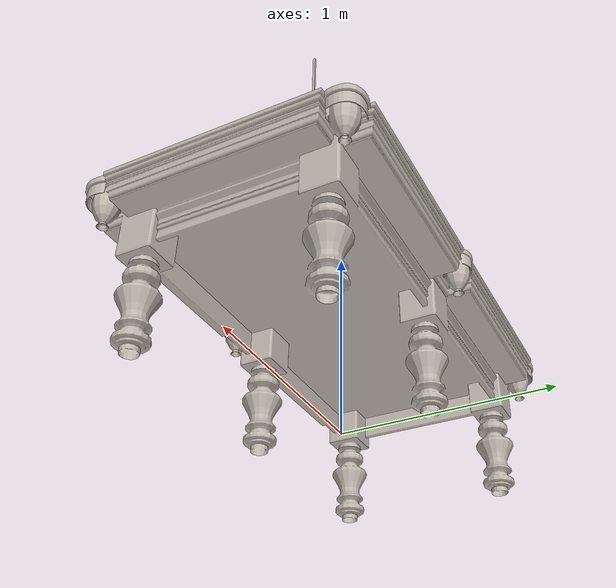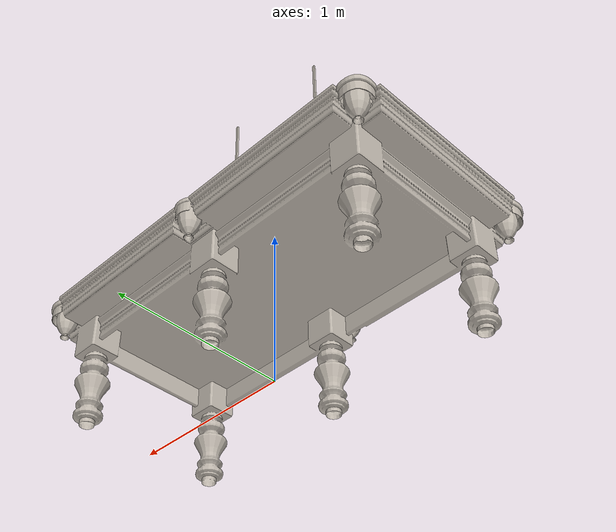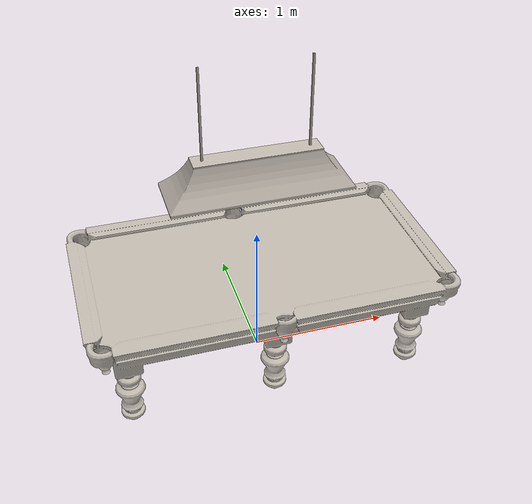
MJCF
<mujoco>
  <asset>
    <texture name="pool_table_mat_texture" type="2d" file="../assets/table/pool_table_traditional/textures/pool_table_mat_baseColor.png" />
    <material name="pool_table_mat" texture="pool_table_mat_texture" rgba="1 1 1 1" reflectance="0.12" />
    <texture name="cue_mat_texture" type="2d" file="../assets/table/pool_table_traditional/textures/cue_mat_baseColor.png" />
    <material name="cue_mat" texture="cue_mat_texture" rgba="1 1 1 1" reflectance="0.12" />
    <texture name="billiard_ball_mat_texture" type="2d" file="../assets/table/pool_table_traditional/textures/billiard_ball_mat_baseColor.png" />
    <material name="billiard_ball_mat" texture="billiard_ball_mat_texture" rgba="1 1 1 1" reflectance="0.12" />
    <texture name="light_mat_texture" type="2d" file="../assets/table/pool_table_traditional/textures/light_mat_baseColor.png" />
    <material name="light_mat" texture="light_mat_texture" rgba="1 1 1 1" reflectance="0.12" emission="0.2" />
    <mesh name="ceiling_light_low_light_mat_0" file="../assets/table/pool_table_traditional/mujoco_full/ceiling_light_low_light_mat_0.obj" />
    <mesh name="pooltable_low_pool_table_mat_0" file="../assets/table/pool_table_traditional/mujoco_full/pooltable_low_pool_table_mat_0.obj" />
  </asset>
  <worldbody>
    <body name="pool_table_traditional_asset_root" pos="-0.00012213 0.00000001 0.00000004">
      <geom name="ceiling_light_low_light_mat_0_visual" type="mesh" mesh="ceiling_light_low_light_mat_0" material="light_mat" contype="0" conaffinity="0" />
      <geom name="pooltable_low_pool_table_mat_0_visual" type="mesh" mesh="pooltable_low_pool_table_mat_0" material="pool_table_mat" contype="0" conaffinity="0" />
      <geom name="pool_asset_playfield_proxy" type="box" pos="0 0 0.654" size="1.18 0.60 0.025" group="3" rgba="0 0.4 1 0.08" contype="0" conaffinity="0" />
    </body>
  </worldbody>
</mujoco>
